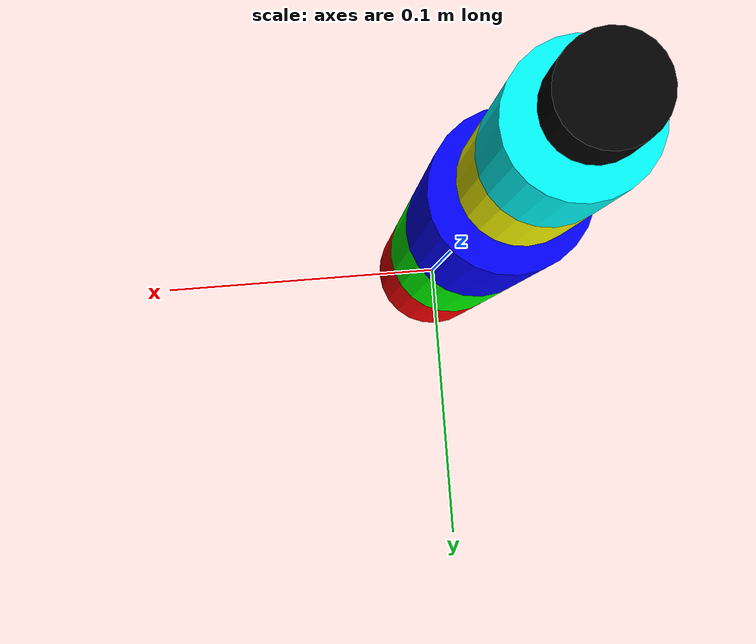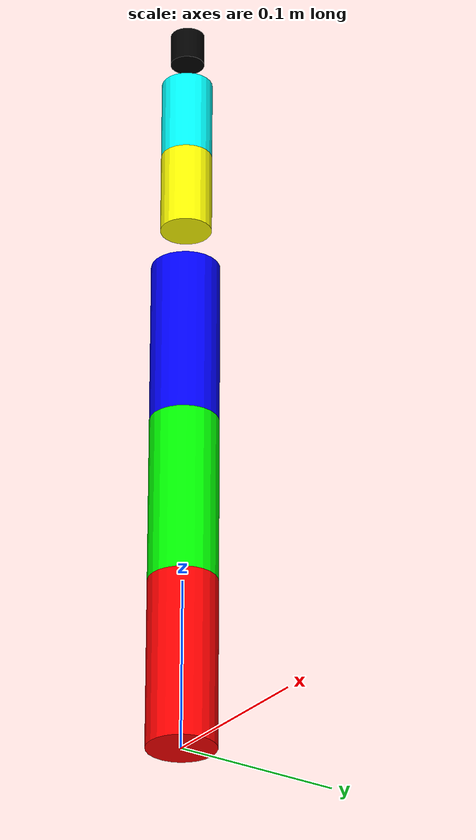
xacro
<?xml version="1.0"?>
<robot xmlns:xacro="http://www.ros.org/wiki/xacro" name="pca_servo_robot">

  <!-- 1. On inclut ton fichier ros2_control existant -->
  <xacro:include filename="pca_servo_control.xacro" />

  <!-- 2. Définition de la base du robot -->
  <link name="base_link"/>

  <!-- 3. Création des 6 joints (avec des liens simples pour la visualisation) -->
  <!-- Joint 1 -->
  <joint name="joint1" type="revolute">
    <parent link="base_link"/>
    <child link="link1"/>
    <origin xyz="0 0 0.05" rpy="0 0 0"/>
    <axis xyz="0 0 1"/>
    <limit lower="-3.14" upper="3.14" effort="1.0" velocity="1.0"/>
  </joint>
  <link name="link1">
    <visual>
      <geometry><cylinder radius="0.02" length="0.1"/></geometry>
      <material name="red"><color rgba="1 0 0 1"/></material>
    </visual>
  </link>

  <!-- Joint 2 -->
  <joint name="joint2" type="revolute">
    <parent link="link1"/>
    <child link="link2"/>
    <origin xyz="0 0 0.1" rpy="0 0 0"/>
    <axis xyz="0 1 0"/>
    <limit lower="-1.57" upper="1.57" effort="1.0" velocity="1.0"/>
  </joint>
  <link name="link2">
    <visual>
      <geometry><cylinder radius="0.02" length="0.1"/></geometry>
      <material name="green"><color rgba="0 1 0 1"/></material>
    </visual>
  </link>

  <!-- Joint 3 -->
  <joint name="joint3" type="revolute">
    <parent link="link2"/>
    <child link="link3"/>
    <origin xyz="0 0 0.1" rpy="0 0 0"/>
    <axis xyz="0 1 0"/>
    <limit lower="-1.57" upper="1.57" effort="1.0" velocity="1.0"/>
  </joint>
  <link name="link3">
    <visual>
      <geometry><cylinder radius="0.02" length="0.1"/></geometry>
      <material name="blue"><color rgba="0 0 1 1"/></material>
    </visual>
  </link>

  <!-- Joint 4 -->
  <joint name="joint4" type="revolute">
    <parent link="link3"/>
    <child link="link4"/>
    <origin xyz="0 0 0.1" rpy="0 0 0"/>
    <axis xyz="0 0 1"/>
    <limit lower="-3.14" upper="3.14" effort="1.0" velocity="1.0"/>
  </joint>
  <link name="link4">
    <visual>
      <geometry><cylinder radius="0.015" length="0.05"/></geometry>
      <material name="yellow"><color rgba="1 1 0 1"/></material>
    </visual>
  </link>

  <!-- Joint 5 -->
  <joint name="joint5" type="revolute">
    <parent link="link4"/>
    <child link="link5"/>
    <origin xyz="0 0 0.05" rpy="0 0 0"/>
    <axis xyz="0 1 0"/>
    <limit lower="-1.57" upper="1.57" effort="1.0" velocity="1.0"/>
  </joint>
  <link name="link5">
    <visual>
      <geometry><cylinder radius="0.015" length="0.05"/></geometry>
      <material name="cyan"><color rgba="0 1 1 1"/></material>
    </visual>
  </link>

  <!-- Joint 6 -->
  <joint name="joint6" type="revolute">
    <parent link="link5"/>
    <child link="link6"/>
    <origin xyz="0 0 0.05" rpy="0 0 0"/>
    <axis xyz="0 0 1"/>
    <limit lower="-3.14" upper="3.14" effort="1.0" velocity="1.0"/>
  </joint>
  <link name="link6">
    <visual>
      <geometry><cylinder radius="0.01" length="0.02"/></geometry>
      <material name="black"><color rgba="0 0 0 1"/></material>
    </visual>
  </link>

</robot>
